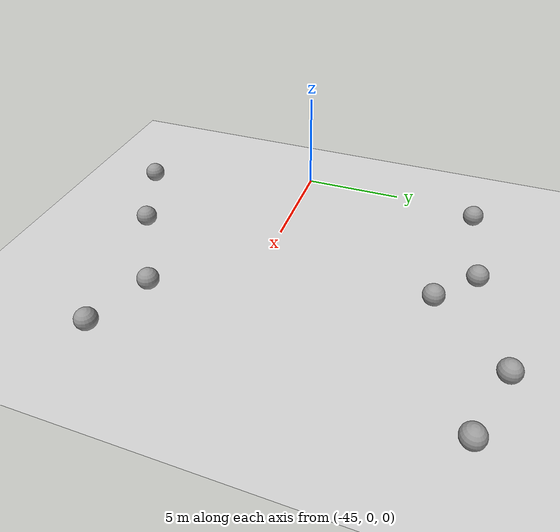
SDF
<sdf version="1.6">
 <world name="default">
  <model name="ground_plane">
   <static>1</static>
   <link name="link">
    <collision name="collision">
     <geometry><plane><normal>0 0 1</normal><size>100 100</size></plane></geometry>
     <surface><friction><ode><mu>100</mu><mu2>50</mu2></ode></friction></surface>
    </collision>
    <visual name="visual">
     <cast_shadows>0</cast_shadows>
     <geometry><plane><normal>0 0 1</normal><size>100 100</size></plane></geometry>
     <material>
      <script><uri>file://media/materials/scripts/gazebo.material</uri><name>Gazebo/Grey</name></script>
     </material>
    </visual>
   </link>
  </model>
  <model name="unit_sphere_0_clone_43">
   <pose>-37.6069 8.01409 0.5 0 -0 0</pose>
   <link name="link">
    <inertial>
     <mass>1</mass>
     <inertia><ixx>0.1</ixx><ixy>0</ixy><ixz>0</ixz><iyy>0.1</iyy><iyz>0</iyz><izz>0.1</izz></inertia>
    </inertial>
    <collision name="collision"><geometry><sphere><radius>0.5</radius></sphere></geometry></collision>
    <visual name="visual">
     <geometry><sphere><radius>0.5</radius></sphere></geometry>
     <material>
      <script><name>Gazebo/Grey</name><uri>file://media/materials/scripts/gazebo.material</uri></script>
     </material>
    </visual>
   </link>
  </model>
  <model name="unit_sphere_0_clone_44">
   <pose>-31.3408 10.2531 0.5 0 -0 0</pose>
   <link name="link">
    <inertial>
     <mass>1</mass>
     <inertia><ixx>0.1</ixx><ixy>0</ixy><ixz>0</ixz><iyy>0.1</iyy><iyz>0</iyz><izz>0.1</izz></inertia>
    </inertial>
    <collision name="collision"><geometry><sphere><radius>0.5</radius></sphere></geometry></collision>
    <visual name="visual">
     <geometry><sphere><radius>0.5</radius></sphere></geometry>
     <material>
      <script><name>Gazebo/Grey</name><uri>file://media/materials/scripts/gazebo.material</uri></script>
     </material>
    </visual>
   </link>
  </model>
  <model name="unit_sphere_0_clone_63">
   <pose>-42.2363 -8.45977 0.5 0 -0 0</pose>
   <link name="link">
    <inertial>
     <mass>1</mass>
     <inertia><ixx>0.1</ixx><ixy>0</ixy><ixz>0</ixz><iyy>0.1</iyy><iyz>0</iyz><izz>0.1</izz></inertia>
    </inertial>
    <collision name="collision"><geometry><sphere><radius>0.5</radius></sphere></geometry></collision>
    <visual name="visual">
     <geometry><sphere><radius>0.5</radius></sphere></geometry>
     <material>
      <script><name>Gazebo/Grey</name><uri>file://media/materials/scripts/gazebo.material</uri></script>
     </material>
    </visual>
   </link>
  </model>
  <model name="unit_sphere_0_clone_64">
   <pose>-31.5345 -5.4075 0.5 0 -0 0</pose>
   <link name="link">
    <inertial>
     <mass>1</mass>
     <inertia><ixx>0.1</ixx><ixy>0</ixy><ixz>0</ixz><iyy>0.1</iyy><iyz>0</iyz><izz>0.1</izz></inertia>
    </inertial>
    <collision name="collision"><geometry><sphere><radius>0.5</radius></sphere></geometry></collision>
    <visual name="visual">
     <geometry><sphere><radius>0.5</radius></sphere></geometry>
     <material>
      <script><name>Gazebo/Grey</name><uri>file://media/materials/scripts/gazebo.material</uri></script>
     </material>
    </visual>
   </link>
  </model>
  <model name="unit_sphere_0_clone_89">
   <pose>-38.4946 -6.74665 0.5 0 -0 0</pose>
   <link name="link">
    <inertial>
     <mass>1</mass>
     <inertia><ixx>0.1</ixx><ixy>0</ixy><ixz>0</ixz><iyy>0.1</iyy><iyz>0</iyz><izz>0.1</izz></inertia>
    </inertial>
    <collision name="collision"><geometry><sphere><radius>0.5</radius></sphere></geometry></collision>
    <visual name="visual">
     <geometry><sphere><radius>0.5</radius></sphere></geometry>
     <material>
      <script><name>Gazebo/Grey</name><uri>file://media/materials/scripts/gazebo.material</uri></script>
     </material>
    </visual>
   </link>
  </model>
  <model name="unit_sphere_0_clone_90">
   <pose>-34.4685 -4.24219 0.5 0 -0 0</pose>
   <link name="link">
    <inertial>
     <mass>1</mass>
     <inertia><ixx>0.1</ixx><ixy>0</ixy><ixz>0</ixz><iyy>0.1</iyy><iyz>0</iyz><izz>0.1</izz></inertia>
    </inertial>
    <collision name="collision"><geometry><sphere><radius>0.5</radius></sphere></geometry></collision>
    <visual name="visual">
     <geometry><sphere><radius>0.5</radius></sphere></geometry>
     <material>
      <script><name>Gazebo/Grey</name><uri>file://media/materials/scripts/gazebo.material</uri></script>
     </material>
    </visual>
   </link>
  </model>
  <model name="unit_sphere_0_clone_103">
   <pose>-43.9323 9.11042 0.5 0 -0 0</pose>
   <link name="link">
    <inertial>
     <mass>1</mass>
     <inertia><ixx>0.1</ixx><ixy>0</ixy><ixz>0</ixz><iyy>0.1</iyy><iyz>0</iyz><izz>0.1</izz></inertia>
    </inertial>
    <collision name="collision"><geometry><sphere><radius>0.5</radius></sphere></geometry></collision>
    <visual name="visual">
     <geometry><sphere><radius>0.5</radius></sphere></geometry>
     <material>
      <script><name>Gazebo/Grey</name><uri>file://media/materials/scripts/gazebo.material</uri></script>
     </material>
    </visual>
   </link>
  </model>
  <model name="unit_sphere_0_clone_104">
   <pose>-39.4486 9.71826 0.5 0 -0 0</pose>
   <link name="link">
    <inertial>
     <mass>1</mass>
     <inertia><ixx>0.1</ixx><ixy>0</ixy><ixz>0</ixz><iyy>0.1</iyy><iyz>0</iyz><izz>0.1</izz></inertia>
    </inertial>
    <collision name="collision"><geometry><sphere><radius>0.5</radius></sphere></geometry></collision>
    <visual name="visual">
     <geometry><sphere><radius>0.5</radius></sphere></geometry>
     <material>
      <script><name>Gazebo/Grey</name><uri>file://media/materials/scripts/gazebo.material</uri></script>
     </material>
    </visual>
   </link>
  </model>
  <model name="unit_sphere_0_clone_105">
   <pose>-34.5379 11.328 0.5 0 -0 0</pose>
   <link name="link">
    <inertial>
     <mass>1</mass>
     <inertia><ixx>0.1</ixx><ixy>0</ixy><ixz>0</ixz><iyy>0.1</iyy><iyz>0</iyz><izz>0.1</izz></inertia>
    </inertial>
    <collision name="collision"><geometry><sphere><radius>0.5</radius></sphere></geometry></collision>
    <visual name="visual">
     <geometry><sphere><radius>0.5</radius></sphere></geometry>
     <material>
      <script><name>Gazebo/Grey</name><uri>file://media/materials/scripts/gazebo.material</uri></script>
     </material>
    </visual>
   </link>
  </model>
 </world>
</sdf>
